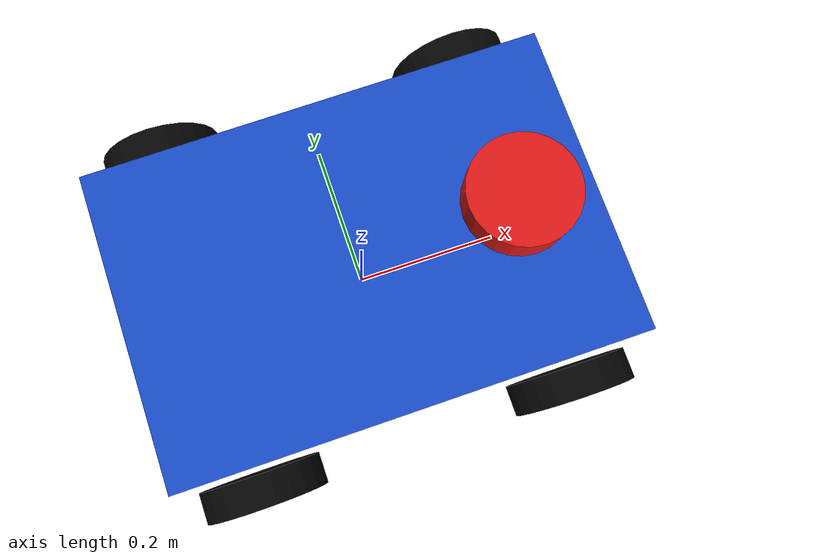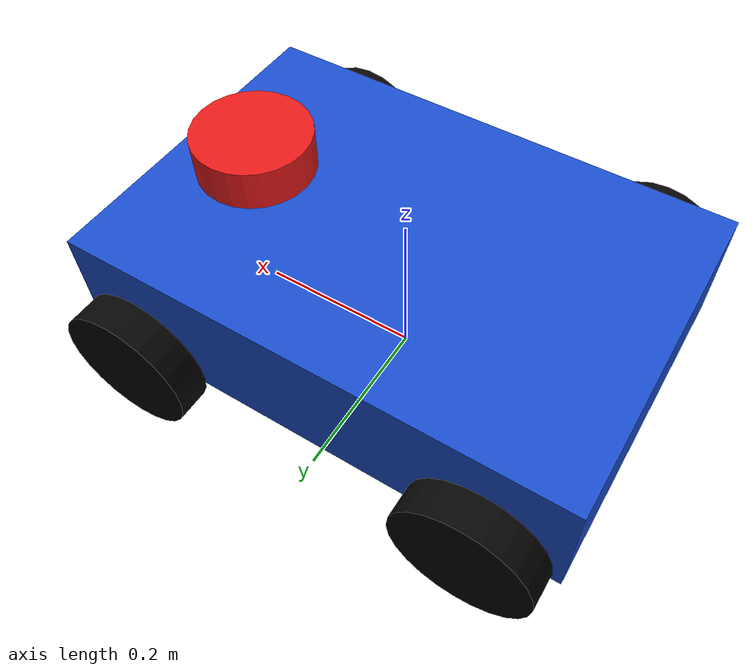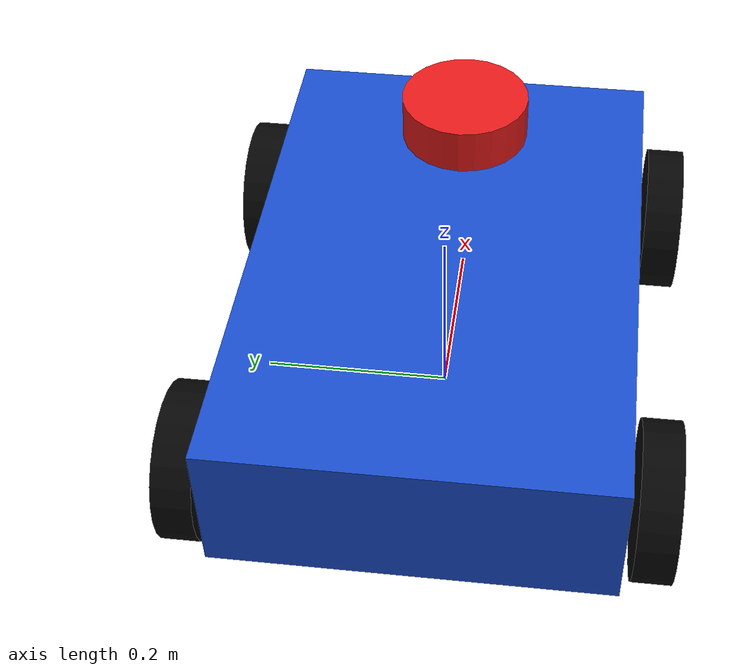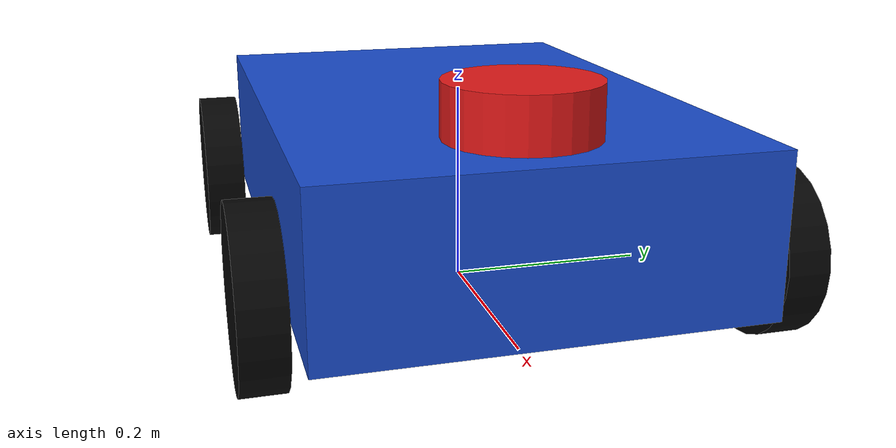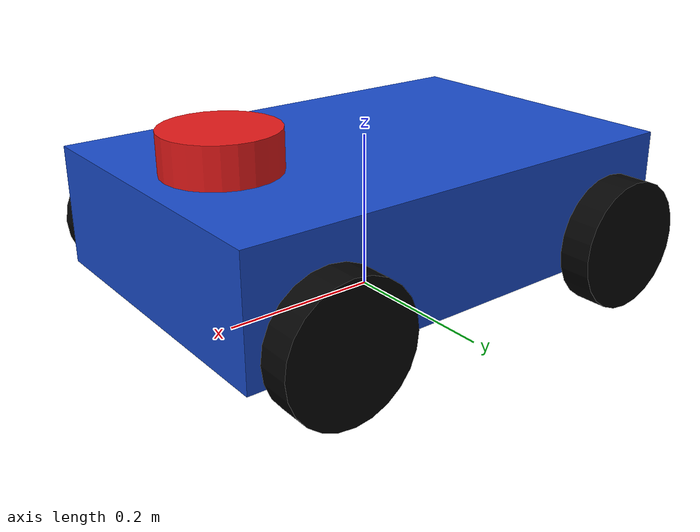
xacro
<?xml version="1.0"?>
<robot xmlns:xacro="http://www.ros.org/wiki/xacro" name="my_robot">

  <xacro:property name="base_length" value="0.60"/>
  <xacro:property name="base_width" value="0.40"/>
  <xacro:property name="base_height" value="0.15"/>

  <xacro:property name="wheel_radius" value="0.08"/>
  <xacro:property name="wheel_width" value="0.04"/>
  <xacro:property name="wheel_x_offset" value="0.21"/>
  <xacro:property name="wheel_y_offset" value="0.23"/>
  <xacro:property name="wheel_z_offset" value="-0.04"/>

  <xacro:property name="laser_radius" value="0.07"/>
  <xacro:property name="laser_height" value="0.05"/>

  <material name="blue">
    <color rgba="0.1 0.3 0.8 1.0"/>
  </material>

  <material name="black">
    <color rgba="0.02 0.02 0.02 1.0"/>
  </material>

  <material name="red">
    <color rgba="0.9 0.1 0.1 1.0"/>
  </material>

  <link name="base_footprint"/>

  <joint name="base_joint" type="fixed">
    <parent link="base_footprint"/>
    <child link="base_link"/>
    <origin xyz="0 0 0.12" rpy="0 0 0"/>
  </joint>

  <link name="base_link">
    <visual>
      <geometry>
        <box size="${base_length} ${base_width} ${base_height}"/>
      </geometry>
      <material name="blue"/>
    </visual>

    <collision>
      <geometry>
        <box size="${base_length} ${base_width} ${base_height}"/>
      </geometry>
    </collision>

    <inertial>
      <mass value="8.0"/>
      <inertia
        ixx="0.12" ixy="0.0" ixz="0.0"
        iyy="0.25" iyz="0.0"
        izz="0.30"/>
    </inertial>
  </link>

  <xacro:macro name="wheel" params="name x y">
    <joint name="${name}_joint" type="continuous">
      <parent link="base_link"/>
      <child link="${name}_link"/>
      <origin xyz="${x} ${y} ${wheel_z_offset}" rpy="${-pi/2} 0 0"/>
      <axis xyz="0 0 1"/>
    </joint>

    <link name="${name}_link">
      <visual>
        <geometry>
          <cylinder radius="${wheel_radius}" length="${wheel_width}"/>
        </geometry>
        <material name="black"/>
      </visual>

      <collision>
        <geometry>
          <cylinder radius="${wheel_radius}" length="${wheel_width}"/>
        </geometry>
      </collision>

      <inertial>
        <mass value="0.8"/>
        <inertia
          ixx="0.002" ixy="0.0" ixz="0.0"
          iyy="0.002" iyz="0.0"
          izz="0.002"/>
      </inertial>
    </link>
  </xacro:macro>

  <xacro:wheel name="left_front_wheel"  x="${wheel_x_offset}"  y="${wheel_y_offset}"/>
  <xacro:wheel name="left_rear_wheel"   x="${-wheel_x_offset}" y="${wheel_y_offset}"/>
  <xacro:wheel name="right_front_wheel" x="${wheel_x_offset}"  y="${-wheel_y_offset}"/>
  <xacro:wheel name="right_rear_wheel"  x="${-wheel_x_offset}" y="${-wheel_y_offset}"/>

  <joint name="laser_joint" type="fixed">
    <parent link="base_link"/>
    <child link="laser_link"/>
    <origin xyz="0.20 0 0.10" rpy="0 0 0"/>
  </joint>

  <link name="laser_link">
    <visual>
      <geometry>
        <cylinder radius="${laser_radius}" length="${laser_height}"/>
      </geometry>
      <material name="red"/>
    </visual>

    <collision>
      <geometry>
        <cylinder radius="${laser_radius}" length="${laser_height}"/>
      </geometry>
    </collision>

    <inertial>
      <mass value="0.2"/>
      <inertia
        ixx="0.0005" ixy="0.0" ixz="0.0"
        iyy="0.0005" iyz="0.0"
        izz="0.0005"/>
    </inertial>
  </link>

</robot>
